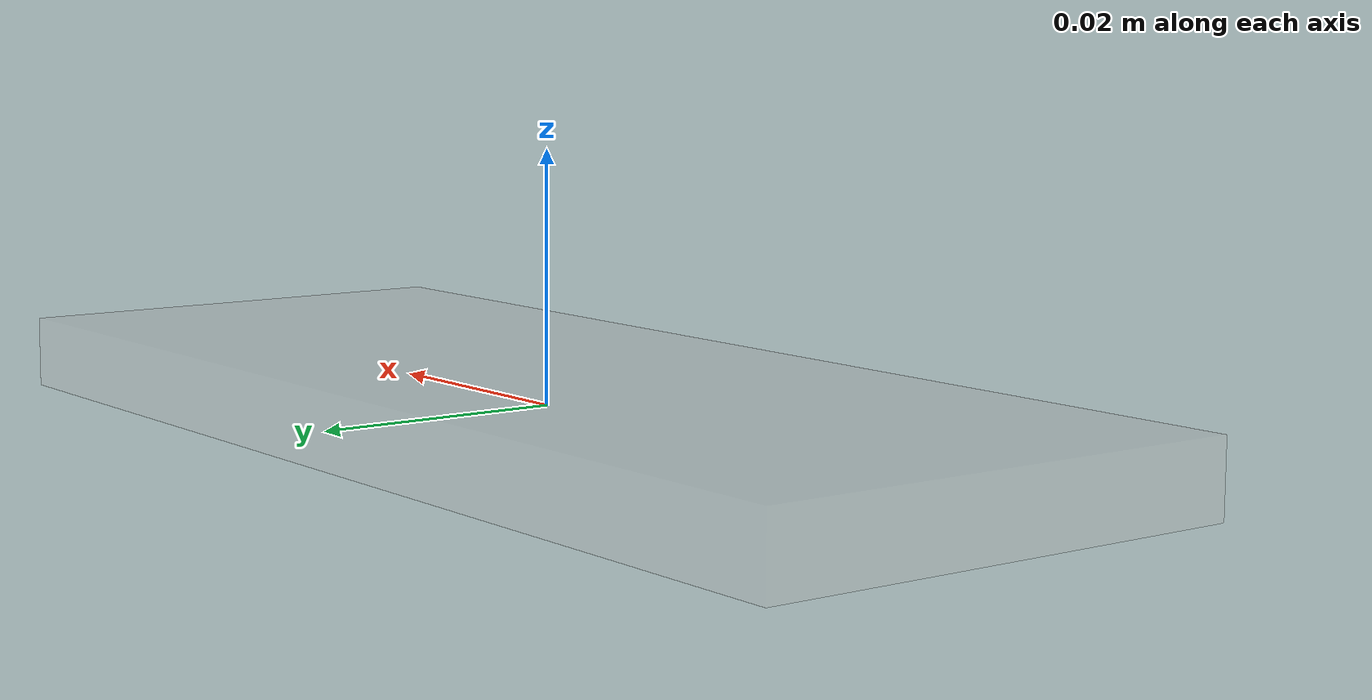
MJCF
<mujoco model="iPhone-visual">
  <asset>
    <mesh file="meshes/iPhone.stl" name="iPhone_mesh"/>
  </asset>
  <worldbody>
    <body>
      <body name="object">
        <geom pos="0 0 0"  type="box" size="0.05 0.02 0.003" rgba="0.8 0.8 0.8 0.3" conaffinity="0" contype="0" group="1" mass="0.0001"/>
      </body>
      <site rgba="0 0 0 0" size="0.005" pos="0 0 -0.06" name="bottom_site"/>
      <site rgba="0 0 0 0" size="0.005" pos="0 0 0.04" name="top_site"/>
      <site rgba="0 0 0 0" size="0.005" pos="0.025 0.025 0" name="horizontal_radius_site"/>
    </body>
  </worldbody>
</mujoco>
